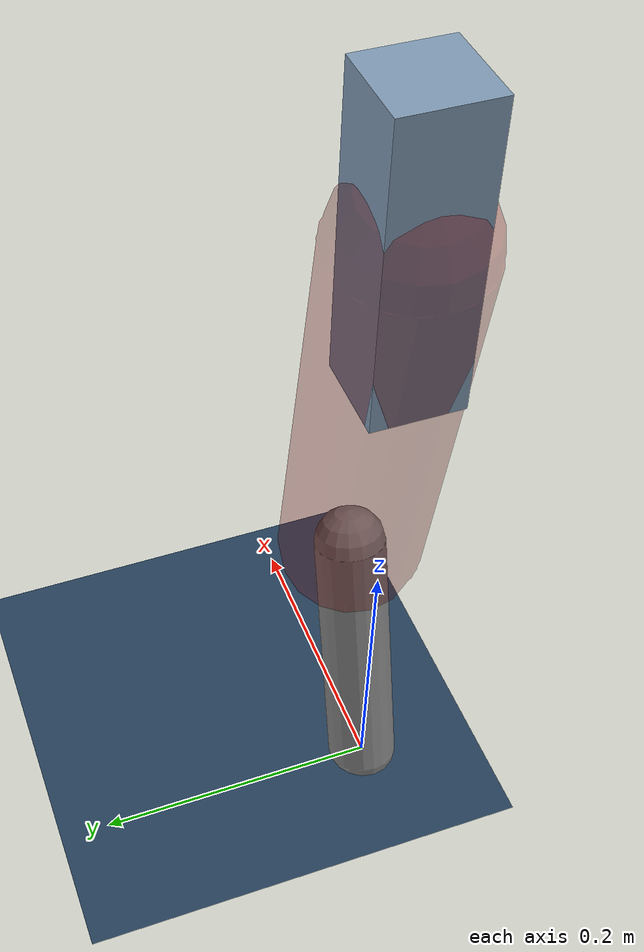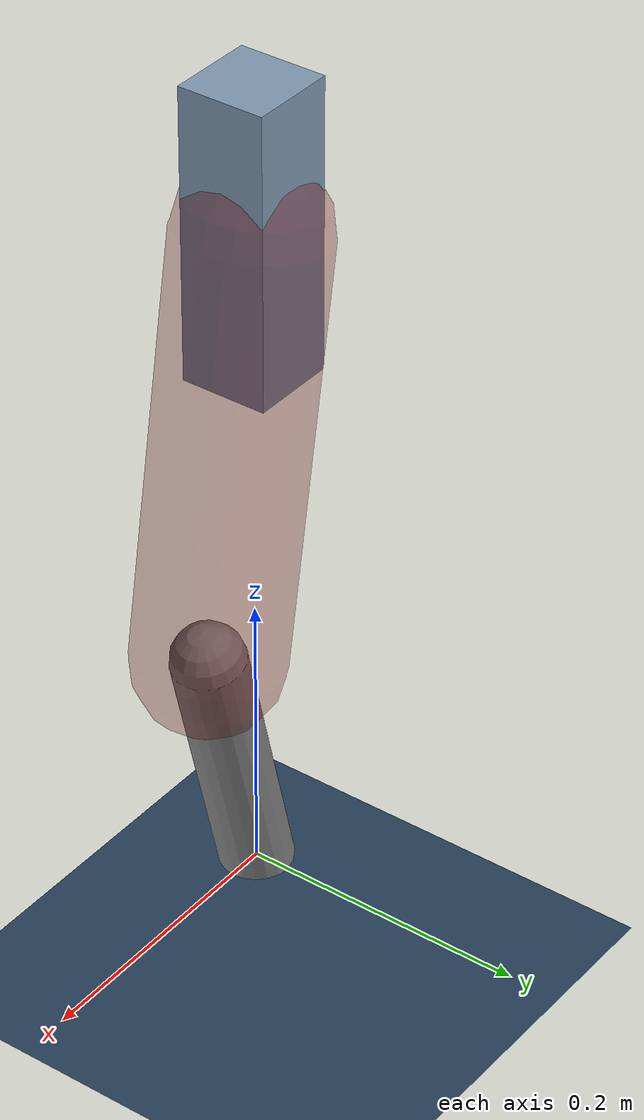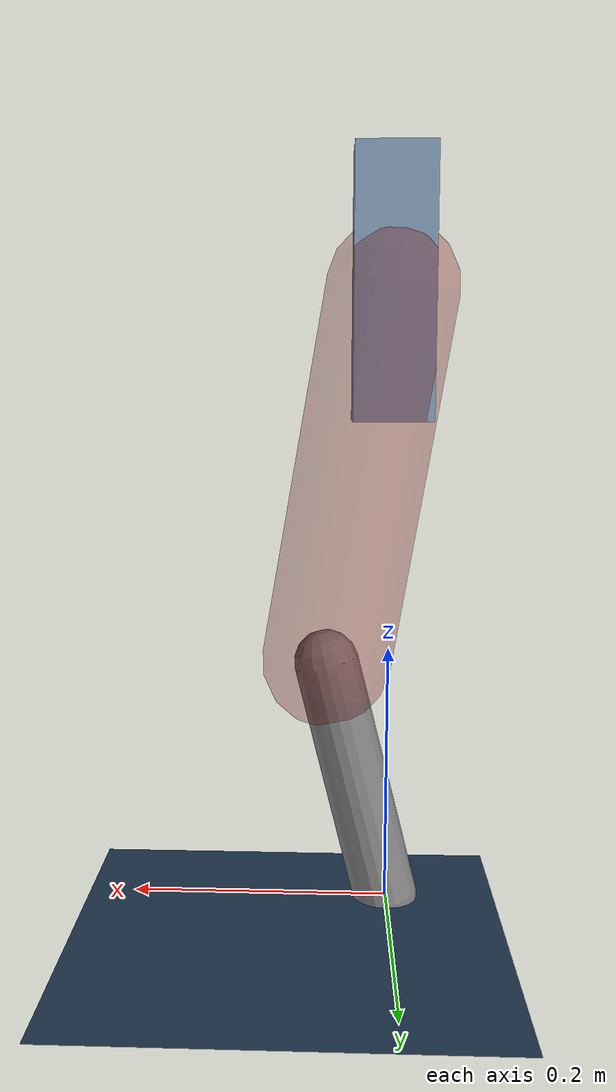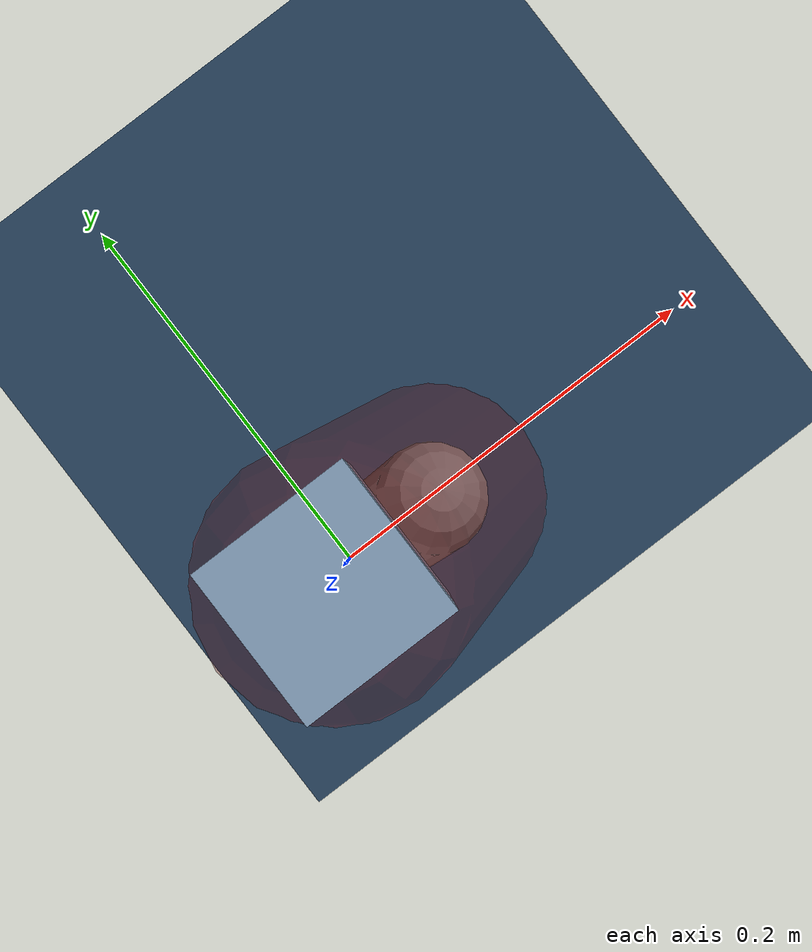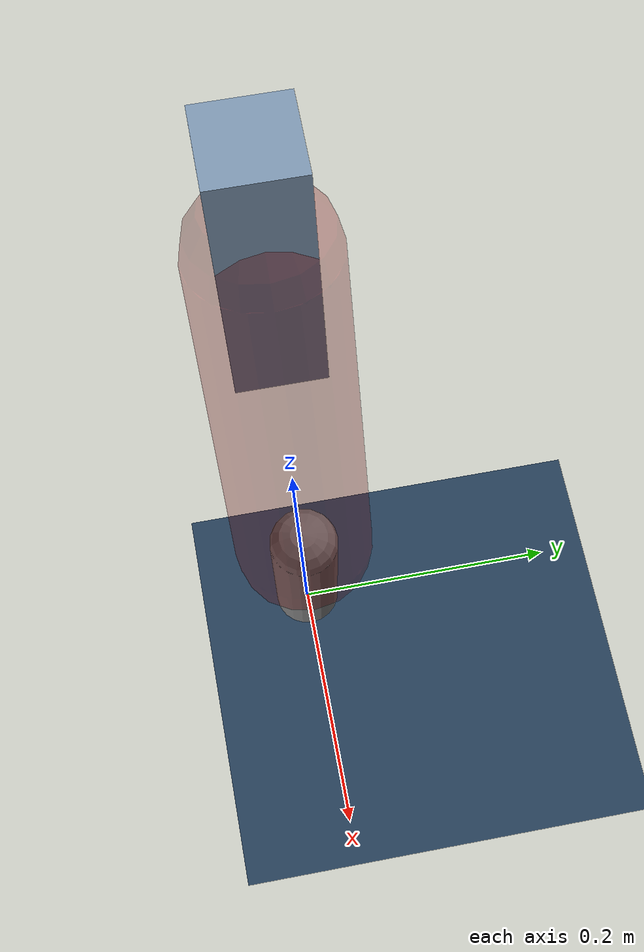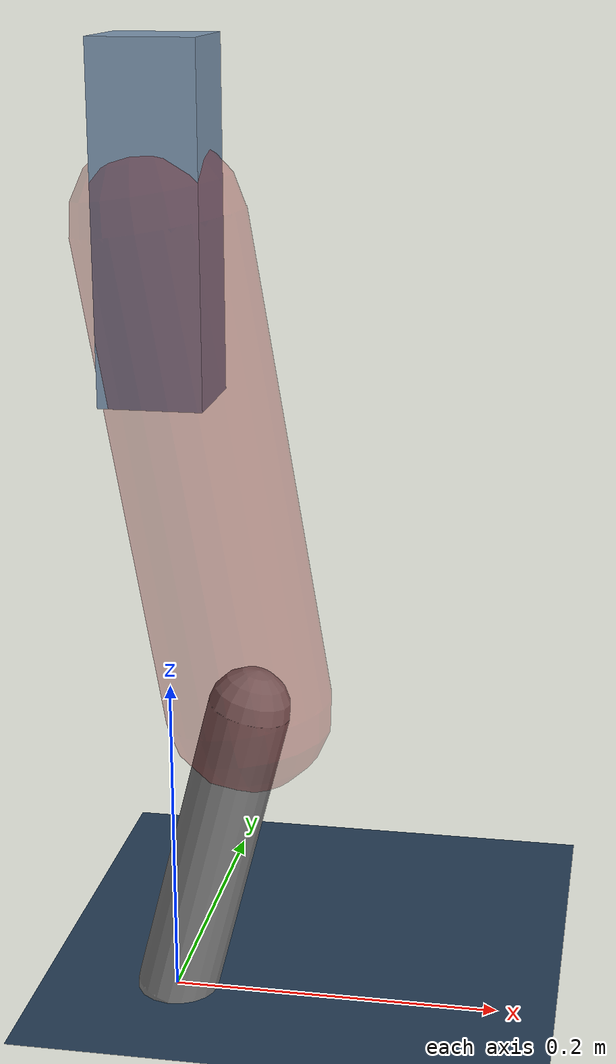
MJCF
<mujoco model="Hopper2D">
	<compiler inertiafromgeom="true" angle="radian" />
	<option timestep="0.001" integrator="implicit" cone="elliptic" solver="Newton" tolerance="1e-10" />

	<default>
		<geom contype="1" conaffinity="1" condim="3" friction="2 0.005 0.0001" solref="0.005 1" />
		<joint limited="true" damping="0.1" />
	</default>

	<asset>
		<texture name="skybox" type="skybox" builtin="gradient" rgb1=".4 .6 .8" rgb2="0 0 0" width="800" height="800" />
		<texture name="grid" type="2d" builtin="checker" rgb1=".1 .2 .3" rgb2=".2 .3 .4" width="300" height="300" mark="edge" markrgb=".2 .3 .4" />
		<material name="ground" texture="grid" texrepeat="1 1" texuniform="true" reflectance="0.1" />
		<material name="leg" rgba="0.5 0.6 0.7 1" />
	</asset>

	<worldbody>

		<geom name="floor" type="plane" size="5 5 0.25" material="ground" />

		<light directional="false" diffuse="0.8 0.8 0.8" specular="0.3 0.3 0.3" pos="0 0 2" dir="0 0 -1" />
		<light mode="targetbodycom" target="base" directional="false" diffuse="0.8 0.8 0.8" specular="0.3 0.3 0.3" pos="0 0 2" dir="0 0 -1" />

		<camera name="fixed" pos="0 -2 1" xyaxes="1 0 0 0 0 1" />
		<camera name="tracking" mode="trackcom" pos="0 -3 1" />

		<body name="root" pos="0 0 0.47562568867432287">
			<joint name="slide_x" type="slide" axis="1 0 0" range="-100 100" />
			<joint name="slide_z" type="slide" axis="0 0 1" range="0 10" />

			<body name="base" pos="0 0 0">
				<geom name="torso" type="box" size="0.03 0.03 0.1" mass="2.699" material="leg" />

				<body name="link1" pos="0 0 0" euler="0 1.4045141288977598 0">
					<joint type="hinge" axis="0 -1 0" pos="0 0 0" name="hinge1" limited="true" range="-3.14 3.14" stiffness="0" damping="0.1" />
					<geom name="thigh" type="capsule" fromto="0 0 0 0.2902270607719502 0 0" size="0.05" rgba="0.5 0 0 0.3" mass="0.9624130640842656" />

					<body name="link2" pos="0.2902270607719502 0 0" euler="0 0.41467212721119423 0">
						<joint type="hinge" axis="0 -1 0" pos="0 0 0" name="hinge2" limited="true" range="-3.14 3.14" stiffness="0" damping="0.1" />
						<geom name="shank" type="capsule" fromto="0 0 0 0.19539862790237264 0 0" size="0.025" mass="0.3970189023218981" />

					</body>
				</body>
			</body>
		</body>
	</worldbody>

	<actuator>
		<motor name="torque1" joint="hinge1" ctrlrange="-72.34414901933283 72.34414901933283" ctrllimited="true" gear="1" />
		<motor name="torque2" joint="hinge2" ctrlrange="-72.46263479496174 72.46263479496174" ctrllimited="true" gear="1" />
	</actuator>
</mujoco>
